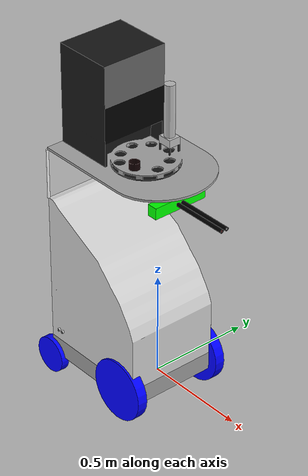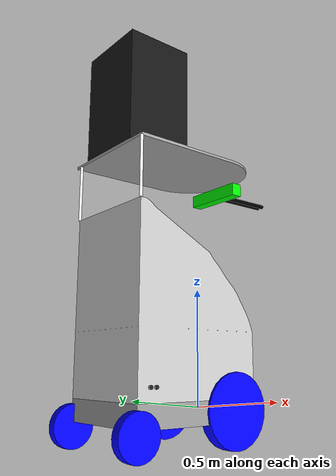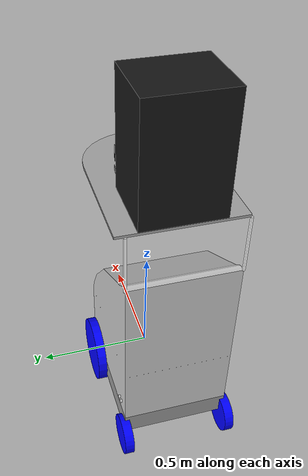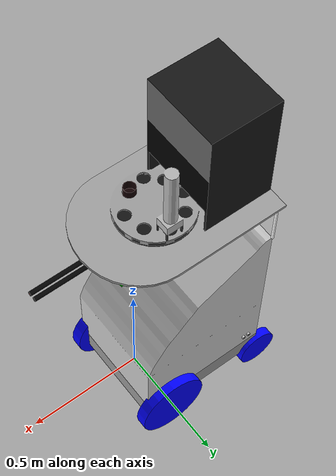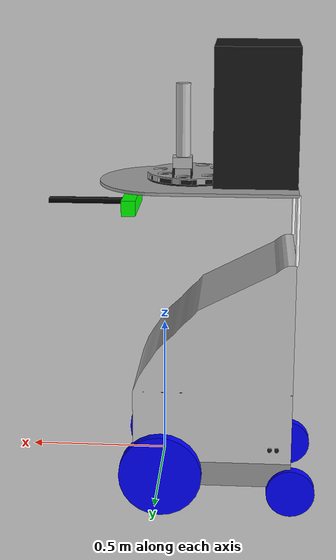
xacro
<?xml version="1.0"?>
<robot name="cobot_navigation" xmlns:xacro="http://ros.org/wiki/xacro">

 <xacro:include filename="$(find cobot_description)/urdf/cobot_library.urdf.xacro" />
 <xacro:include filename="$(find cobot_description)/urdf/constants.urdf.xacro" />

<!-- Cobot body -->
 <cobot_base />
 <cobot_body parent_link="platform_link"/>
 <cobot_top parent_link="frame_right_top_link" height_offset="${frame_top_length}" />

<!-- Kinect -->
 <kinect parent_link="base_link" parent_x="0.12 " parent_y="0.0125" parent_z="0.955" parent_ox="${pi}" parent_oy="0" parent_oz="0" />

<!-- Front ultrasoon sensors-->
 <ultrasoon parent_link="base_link" panel="front" side="middle" parent_x="0.085" parent_y="-0.195" parent_z="0" parent_ox="0" parent_oy="0" parent_oz="0" />
 <ultrasoon parent_link="base_link" panel="front" side="left" parent_x="0.085" parent_y="0" parent_z="0" parent_ox="0" parent_oy="0" parent_oz="0" />
 <ultrasoon parent_link="base_link" panel="front" side="right" parent_x="0.085" parent_y="0.18" parent_z="0" parent_ox="0" parent_oy="0" parent_oz="0" />

<!-- Back ultrasoon sensors-->

<!-- Left side ultrasoon sensors-->
 <ultrasoon parent_link="base_link" panel="left" side="left" parent_x="-0.405" parent_y="0.225" parent_z="0.1" parent_ox="0" parent_oy="0" parent_oz="${pi/2}" />

<!-- Right side ultrasoon sensors-->
 <ultrasoon parent_link="base_link" panel="right" side="right" parent_x="-0.405" parent_y="-0.225" parent_z="0.1" parent_ox="0" parent_oy="0" parent_oz="${(3*pi)/2}" />

</robot>

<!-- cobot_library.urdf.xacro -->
<!--
  Library, this includes all 'loose' urdf and xacro files of cobot.
 -->
<robot name="library" xmlns:xacro="http://ros.org/wiki/xacro">

  <!-- ### Materials ### -->

  <!--
    Material constants of the robot(like colors)
  -->
  <xacro:include filename="$(find cobot_description)/urdf/materials/materials.urdf.xacro"/>

  <!-- ### Platform ### -->

  <!--
    Base (Platform) of the robot
  -->
  <xacro:include filename="$(find cobot_description)/urdf/platform/base.urdf.xacro"/>
  <!--
    Body of the robot
    @param parent_link name of the parent link
  -->
  <xacro:include filename="$(find cobot_description)/urdf/platform/body.urdf.xacro"/>
  <!--
    Top part of the robot
    @param parent_link name of the parent link
    @param height_offset z-distance relative to the parent link
  -->
  <xacro:include filename="$(find cobot_description)/urdf/platform/top.urdf.xacro"/>

  <!-- ### Sensors ### -->

  <xacro:include filename="$(find cobot_description)/urdf/sensors/kinect.urdf.xacro"/>
  <xacro:include filename="$(find cobot_description)/urdf/sensors/ultrasoon.urdf.xacro"/>

</robot>

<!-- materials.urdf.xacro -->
<!--
  Defines all the materials used
 -->
<robot name="xacro_materials" xmlns:xacro="http://ros.org/wiki/xacro">

  <material name="white">
    <color rgba="1 1 1 1"/>
  </material>

  <material name="grey">
    <color rgba="0.5 0.5 0.5 1"/>
  </material>

  <material name="light_grey">
    <color rgba="0.6 0.6 0.6 1"/>
  </material>

  <material name="dark_grey">
    <color rgba="0.3 0.3 0.3 1"/>
  </material>

  <material name="black">
    <color rgba="0.01 0.01 0.01 1"/>
  </material>

  <material name="red">
    <color rgba="1 0 0 1"/>
  </material>

  <material name="blue">
    <color rgba="0 0 1 1"/>
  </material>

  <material name="green">
    <color rgba="0 1 0 1"/>
  </material>

</robot>

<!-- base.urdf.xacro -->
<robot name="cobot_base"  xmlns:xacro="http://ros.org/wiki/xacro">

<!-- Combined macro's -->
  <xacro:macro name="cobot_base">

    <xacro:base_platform />
    <xacro:powered_wheel parent_link="base_link" side="left" mirror="1" />
    <xacro:powered_wheel parent_link="base_link" side="right" mirror="-1" />
    <xacro:caster_wheel parent_link="base_link" side="left" mirror="1" />
    <xacro:caster_wheel parent_link="base_link" side="right" mirror="-1" />

  </xacro:macro>

  <xacro:include filename="$(find cobot_description)/urdf/constants.urdf.xacro" />

  <xacro:property name="platform_length" value="0.57" />
  <xacro:property name="platform_width" value="0.46" />
  <xacro:property name="platform_height" value="0.09" />

  <xacro:property name="center_wheel_axis_to_front_platform_distance" value="0.1" />

  <xacro:property name="powered_wheel_diameter" value="0.3" />
  <xacro:property name="powered_wheel_thickness" value="0.05" />
  <xacro:property name="powered_wheel_spacing" value="0.015" />

  <xacro:property name="caster_wheel_diameter" value="0.175" />
  <xacro:property name="caster_wheel_thickness" value="0.04" />

    <xacro:macro name="powered_wheel" params="parent_link side mirror">
      <link name="powered_${side}_wheel_link">
        <visual>
          <origin xyz="0 0 0" rpy="${pi/2} 0 0" />
          <geometry>
            <cylinder radius="${powered_wheel_diameter/2.0}" length="${powered_wheel_thickness}"/>
          </geometry>
          <material name="blue" />
        </visual>
      </link>
    <xacro:powered_wheel_joint parent_link="${parent_link}" side="${side}" mirror="${mirror}" />
    </xacro:macro>

    <xacro:macro name="powered_wheel_joint" params="parent_link side mirror">
      <joint name="powered_${side}_wheel_joint" type="fixed">
        <parent link="${parent_link}"/>
        <child link="powered_${side}_wheel_link"/>
        <origin xyz="0 ${(platform_width/2.0)*mirror+powered_wheel_spacing} 0" rpy="0 0 0"/>
      </joint>
    </xacro:macro>

    <xacro:macro name="caster_wheel" params="parent_link side mirror">
      <link name="caster_${side}_wheel_link">
        <visual>
          <origin xyz="0 0 0" rpy="${pi/2} 0 0" />
          <geometry>
            <cylinder radius="${caster_wheel_diameter/2.0}" length="${caster_wheel_thickness}"/>
          </geometry>
          <material name="blue" />
        </visual>
      </link>
    <xacro:caster_wheel_joint parent_link="${parent_link}" side="${side}" mirror="${mirror}" />
    </xacro:macro>

    <xacro:macro name="caster_wheel_joint" params="parent_link side mirror">
      <joint name="caster_${side}_wheel_joint" type="fixed">
        <parent link="${parent_link}"/>
        <child link="caster_${side}_wheel_link"/>
        <origin xyz="${-platform_length+center_wheel_axis_to_front_platform_distance} ${(platform_width/2.0)*mirror} -${(powered_wheel_diameter/2.0)-(caster_wheel_diameter/2.0)}" rpy="0 0 0"/>
      </joint>
    </xacro:macro>

  <xacro:macro name="base_platform">

    <link name="base_link">
      <visual>
      <origin xyz="0 0 0" rpy="0 0 0" />
        <geometry>
          <box size=".02 ${platform_width} 0.01" />
        </geometry>
      </visual>
    </link>

    <link name="platform_link">
      <visual>
      <origin xyz="${platform_length/2.0} ${platform_width/2.0} -${platform_height/2.0}" rpy="0 0 0" />
        <geometry>
          <box size="${platform_length} ${platform_width} ${platform_height}" />
        </geometry>
          <material name="light_grey" />
      </visual>
    </link>
    <joint name="platform_joint" type="fixed">
      <parent link="base_link" />
      <child link="platform_link" />
      <origin xyz="${-platform_length+center_wheel_axis_to_front_platform_distance} -${platform_width/2.0} ${platform_height/2.0}" rpy="0 0 0" />
    </joint>

  </xacro:macro>

</robot>

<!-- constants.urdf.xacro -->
<!--
  Some handy constants
 -->
<robot name="constants" xmlns:xacro="http://ros.org/wiki/xacro">

  <xacro:property name="pi" value="3.1415" />

</robot>

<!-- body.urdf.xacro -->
<robot name="cobot_body" xmlns:xacro="http://ros.org/wiki/xacro">

  <xacro:macro name="cobot_body" params="parent_link" >

    <xacro:body />
    <xacro:frame_top parent_link="body_link" side="left" mirror="1"/>
    <xacro:frame_top parent_link="body_link" side="right" mirror="0"/>

  </xacro:macro>

  <xacro:include filename="$(find cobot_description)/urdf/constants.urdf.xacro" />

  <xacro:property name="frame_top_length" value="0.245" />
  <xacro:property name="frame_top_diameter" value="0.012" />

  <!-- taken from mesh file -->
  <xacro:property name="body_height" value="0.74" />
  <xacro:property name="body_width" value="0.46" />

  <xacro:macro name="frame_top" params="parent_link side mirror">
    <link name="frame_${side}_top_link">
     <visual>
     <origin xyz="0 0 ${frame_top_length/2.0}" rpy="0 0 0" />
      <geometry>
        <cylinder radius="${frame_top_diameter/2.0}" length="${frame_top_length}" />
      </geometry>
      <material name="white" />
    </visual>
    </link>

    <joint name="frame_${side}_top_joint" type="fixed">
      <parent link="${parent_link}" />
      <child link="frame_${side}_top_link" />
      <origin xyz="0 ${body_width*mirror} ${body_height}" rpy="0 0 0" />
    </joint>
  </xacro:macro>

  <xacro:macro name="body" param="parent_link">
   <link name="body_link">
      <visual>
      <origin xyz="0 0 0" rpy="0 0 0" />
       <geometry>
         <mesh filename="package://cobot_description/meshes/dae/body.dae" />
       </geometry>
     </visual>
   </link>

   <joint name="body_joint" type="fixed">
      <parent link="${parent_link}" />
      <child link="body_link" />
      <origin xyz="0 0 0" rpy="0 0 0" />
    </joint>

  </xacro:macro>

</robot>

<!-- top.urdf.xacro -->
<robot name="mesh" xmlns:xacro="http://ros.org/wiki/xacro">

  <xacro:macro name="cobot_top" params="parent_link height_offset" >

    <xacro:top parent_link="${parent_link}" height_offset="${height_offset}"/>

  </xacro:macro>

  <xacro:include filename="$(find cobot_description)/urdf/constants.urdf.xacro" />

  <xacro:macro name="top" params="parent_link height_offset">
    <link name="top_link">
       <visual>
       <origin xyz="0 0 0" rpy="0 0 0" />
        <geometry>
          <mesh filename="package://cobot_description/meshes/dae/top.dae" />
        </geometry>
      </visual>
    </link>

    <joint name="top_joint" type="fixed">
      <parent link="${parent_link}" />
      <child link="top_link" />
      <origin xyz="0 0 ${height_offset}" rpy="0 0 0" />
    </joint>
  </xacro:macro>

</robot>

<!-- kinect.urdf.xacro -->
<robot name="kinect" xmlns:xacro="http://ros.org/wiki/xacro">

  <xacro:include filename="$(find cobot_description)/urdf/constants.urdf.xacro" />

  <xacro:property name="camera_length" value="0.275" />
  <xacro:property name="camera_width" value="0.05" />
  <xacro:property name="camera_height" value="0.055" />

  <xacro:property name="camera_diameter_lens" value="0.018" />

  <xacro:property name="camera_name"        value="kinect" />

<xacro:macro name="kinect" params="parent_link parent_x parent_y parent_z parent_ox parent_oy parent_oz">

  <link name="${camera_name}_rgb_frame">
     <visual>
     <origin xyz="0.15 0 0" rpy="${parent_ox} ${parent_oy + pi/2} ${parent_oz}" />
      <geometry>
        <cylinder radius="${camera_diameter_lens/2.0}" length="0.3" />
      </geometry>
     <material name="black"/>
    </visual>
  </link>

  <link name="${camera_name}_rgb_optical_frame">
     <visual>
     <origin xyz="0.15 0 0" rpy="${parent_ox} ${parent_oy + pi/2} ${parent_oz}" />
      <geometry>
        <cylinder radius="${camera_diameter_lens/4.0}" length="0.3" />
      </geometry>
     <material name="white"/>
    </visual>
  </link>

  <link name="${camera_name}_link">
   <visual>
    <origin xyz="0 0 0" rpy="0 0 0"/>
     <geometry>
       <box size="${camera_width} ${camera_length} ${camera_height}" />
     </geometry>
    <material name="green" />
   </visual>
  </link>

	<link name="${camera_name}_depth_frame">
   <visual>
     <origin xyz="0.15 0 0" rpy="${parent_ox} ${parent_oy + pi/2.0} ${parent_oz}" />
      <geometry>
        <cylinder radius="${camera_diameter_lens/2.0}" length="0.3" />
      </geometry>
     <material name="black"/>
    </visual>
  </link>

	<link name="${camera_name}_depth_optical_frame">
   <visual>
     <origin xyz="0.15 0 0" rpy="${parent_ox} ${parent_oy + pi/2.0} ${parent_oz}" />
      <geometry>
        <cylinder radius="${camera_diameter_lens/4.0}" length="0.3" />
      </geometry>
     <material name="red"/>
    </visual>
  </link>

  <joint name="${camera_name}_rgb_joint" type="fixed">
    <origin xyz="${parent_x} ${parent_y} ${parent_z}" rpy="${parent_ox} ${parent_oy} ${parent_oz}" />
    <parent link="${parent_link}" />
    <child link="${camera_name}_rgb_frame" />
  </joint>

   <joint name="${camera_name}_rgb_optical_joint" type="fixed">
     <origin xyz="0 0 0" rpy="0 0 0" />
     <parent link="${camera_name}_rgb_frame" />
     <child link="${camera_name}_rgb_optical_frame" />
   </joint>

   <joint name="${camera_name}_joint" type="fixed">
     <origin xyz="0 0.0125 0" rpy="0 0 0"/>
     <parent link="${camera_name}_rgb_frame"/>
     <child link="${camera_name}_link"/>
   </joint>

	<joint name="${camera_name}_depth_joint" type="fixed">
	  <origin xyz="0 0.027 0" rpy="0 0 0" />
	  <parent link="${camera_name}_rgb_frame" />
	  <child link="${camera_name}_depth_frame" />
	</joint>

	<joint name="${camera_name}_depth_optical_joint" type="fixed">
	  <origin xyz="0 0 0" rpy="0 0 0" />
	  <parent link="${camera_name}_depth_frame" />
	  <child link="${camera_name}_depth_optical_frame" />
	</joint>

</xacro:macro>

</robot>

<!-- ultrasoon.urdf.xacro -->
<robot name="ultrasoon" xmlns:xacro="http://ros.org/wiki/xacro">

  <xacro:include filename="$(find cobot_description)/urdf/constants.urdf.xacro" />

  <xacro:macro name="ultrasoon" params="parent_link panel side parent_x parent_y parent_z parent_ox parent_oy parent_oz">
    <link name="ultrasoon_${panel}_${side}_link">
       <visual>
       <origin xyz="0 0 0" rpy="0 0 0" />
        <geometry>
          <mesh filename="package://cobot_description/meshes/dae/ultrasoon.dae" />
        </geometry>
      </visual>
    </link>
    <joint name="ultrasoon_${panel}_${side}_joint" type="fixed">
      <parent link="${parent_link}" />
      <child link="ultrasoon_${panel}_${side}_link" />
      <origin xyz="${parent_x} ${parent_y} ${parent_z}" rpy="${parent_ox} ${parent_oy} ${parent_oz}" />
    </joint>

  </xacro:macro>

</robot>
